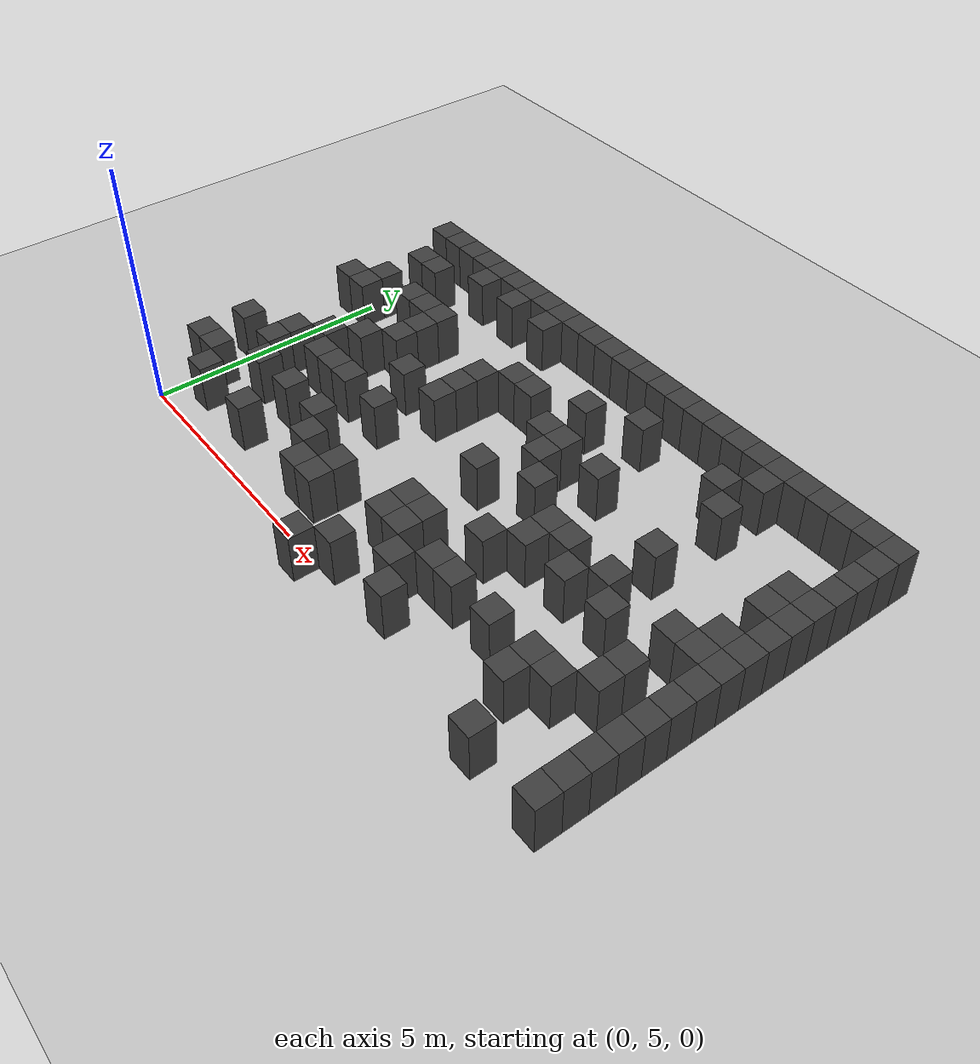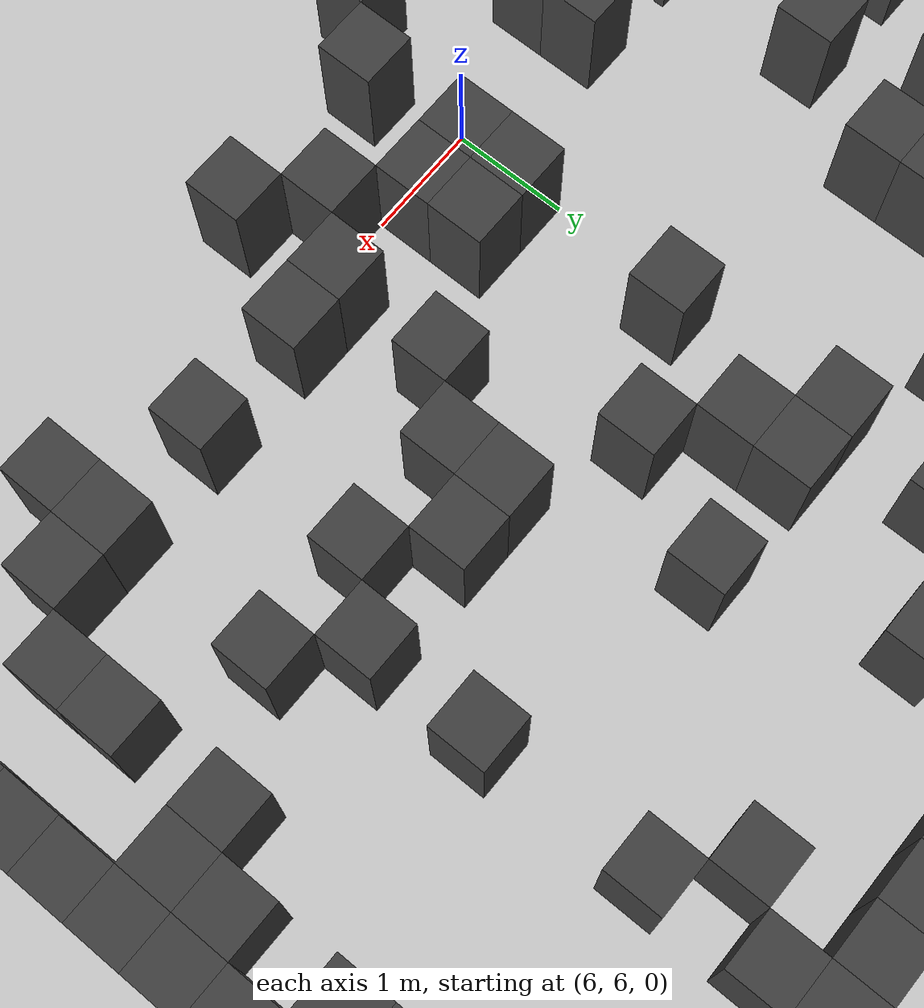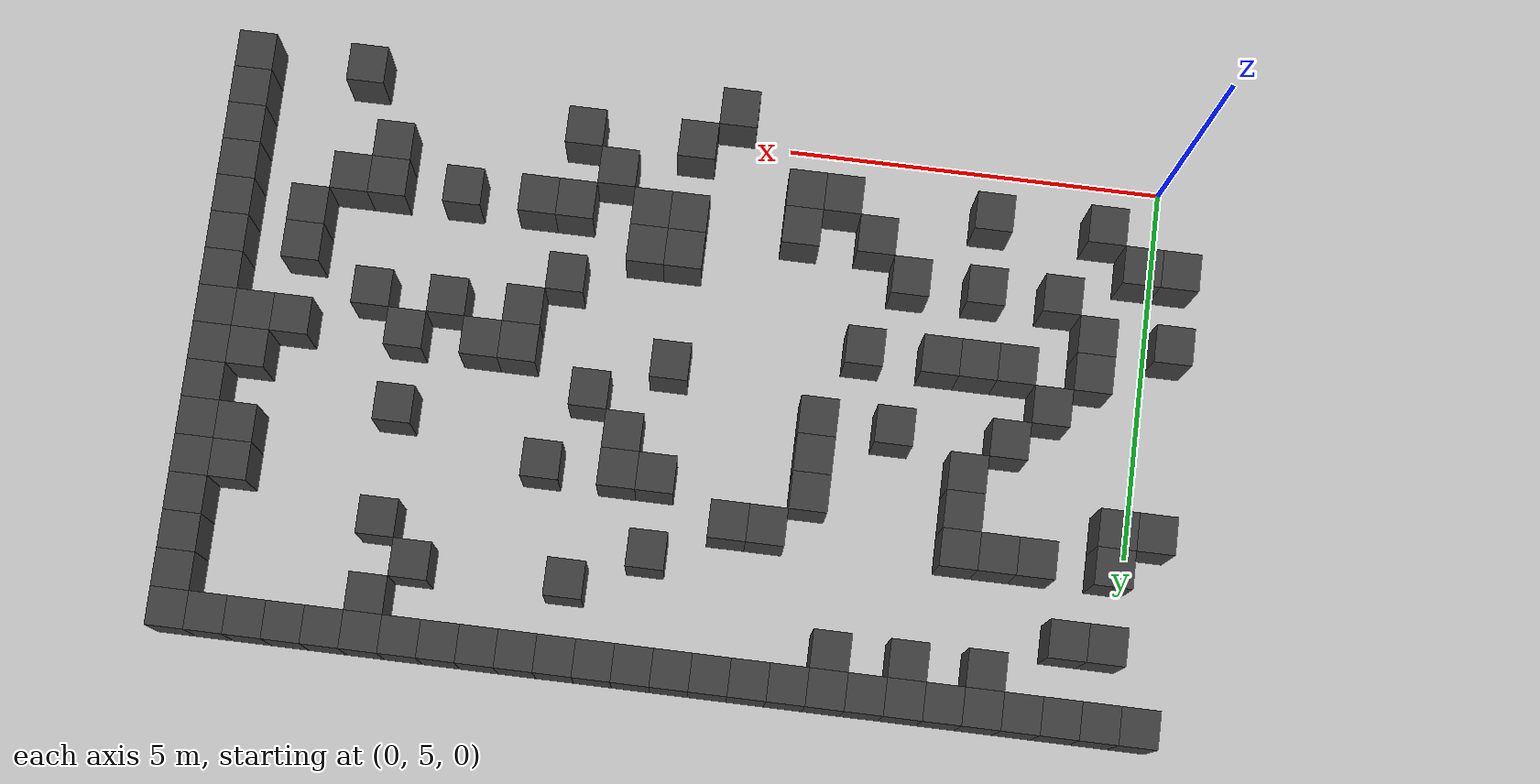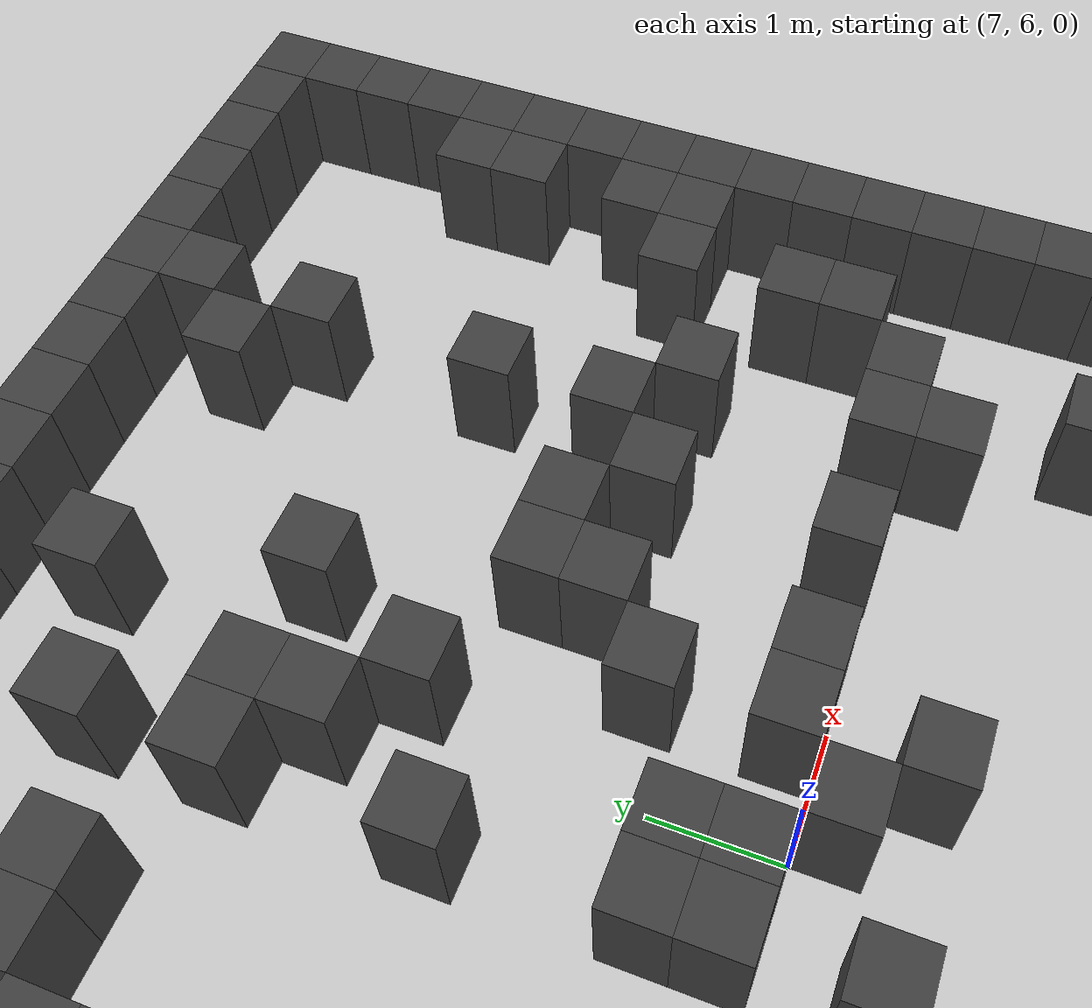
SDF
<sdf version="1.7">
 <world name="map_4752">
  <model name="ground_plane">
   <static>true</static>
   <link name="link">
    <collision name="collision">
     <geometry><plane><normal>0 0 1</normal><size>200 200</size></plane></geometry>
    </collision>
    <visual name="visual">
     <geometry><plane><normal>0 0 1</normal><size>200 200</size></plane></geometry>
     <material><ambient>0.8 0.8 0.8 1</ambient><diffuse>0.8 0.8 0.8 1</diffuse></material>
    </visual>
   </link>
  </model>
  <model name="maze_environment">
   <static>true</static>
   <link name="wall_24">
    <pose>-0.250 12.250 0.500 0 0 0</pose>
    <collision name="col"><geometry><box><size>0.5 0.5 1.0</size></box></geometry></collision>
    <visual name="vis">
     <geometry><box><size>0.5 0.5 1.0</size></box></geometry>
     <material><ambient>0.15 0.15 0.15 1</ambient><diffuse>0.25 0.25 0.25 1</diffuse></material>
    </visual>
   </link>
   <link name="wall_25">
    <pose>0.250 12.250 0.500 0 0 0</pose>
    <collision name="col"><geometry><box><size>0.5 0.5 1.0</size></box></geometry></collision>
    <visual name="vis">
     <geometry><box><size>0.5 0.5 1.0</size></box></geometry>
     <material><ambient>0.15 0.15 0.15 1</ambient><diffuse>0.25 0.25 0.25 1</diffuse></material>
    </visual>
   </link>
   <link name="wall_26">
    <pose>0.750 12.250 0.500 0 0 0</pose>
    <collision name="col"><geometry><box><size>0.5 0.5 1.0</size></box></geometry></collision>
    <visual name="vis">
     <geometry><box><size>0.5 0.5 1.0</size></box></geometry>
     <material><ambient>0.15 0.15 0.15 1</ambient><diffuse>0.25 0.25 0.25 1</diffuse></material>
    </visual>
   </link>
   <link name="wall_27">
    <pose>1.250 12.250 0.500 0 0 0</pose>
    <collision name="col"><geometry><box><size>0.5 0.5 1.0</size></box></geometry></collision>
    <visual name="vis">
     <geometry><box><size>0.5 0.5 1.0</size></box></geometry>
     <material><ambient>0.15 0.15 0.15 1</ambient><diffuse>0.25 0.25 0.25 1</diffuse></material>
    </visual>
   </link>
   <link name="wall_28">
    <pose>1.750 12.250 0.500 0 0 0</pose>
    <collision name="col"><geometry><box><size>0.5 0.5 1.0</size></box></geometry></collision>
    <visual name="vis">
     <geometry><box><size>0.5 0.5 1.0</size></box></geometry>
     <material><ambient>0.15 0.15 0.15 1</ambient><diffuse>0.25 0.25 0.25 1</diffuse></material>
    </visual>
   </link>
   <link name="wall_29">
    <pose>2.250 12.250 0.500 0 0 0</pose>
    <collision name="col"><geometry><box><size>0.5 0.5 1.0</size></box></geometry></collision>
    <visual name="vis">
     <geometry><box><size>0.5 0.5 1.0</size></box></geometry>
     <material><ambient>0.15 0.15 0.15 1</ambient><diffuse>0.25 0.25 0.25 1</diffuse></material>
    </visual>
   </link>
   <link name="wall_30">
    <pose>2.750 12.250 0.500 0 0 0</pose>
    <collision name="col"><geometry><box><size>0.5 0.5 1.0</size></box></geometry></collision>
    <visual name="vis">
     <geometry><box><size>0.5 0.5 1.0</size></box></geometry>
     <material><ambient>0.15 0.15 0.15 1</ambient><diffuse>0.25 0.25 0.25 1</diffuse></material>
    </visual>
   </link>
   <link name="wall_31">
    <pose>3.250 12.250 0.500 0 0 0</pose>
    <collision name="col"><geometry><box><size>0.5 0.5 1.0</size></box></geometry></collision>
    <visual name="vis">
     <geometry><box><size>0.5 0.5 1.0</size></box></geometry>
     <material><ambient>0.15 0.15 0.15 1</ambient><diffuse>0.25 0.25 0.25 1</diffuse></material>
    </visual>
   </link>
   <link name="wall_32">
    <pose>3.750 12.250 0.500 0 0 0</pose>
    <collision name="col"><geometry><box><size>0.5 0.5 1.0</size></box></geometry></collision>
    <visual name="vis">
     <geometry><box><size>0.5 0.5 1.0</size></box></geometry>
     <material><ambient>0.15 0.15 0.15 1</ambient><diffuse>0.25 0.25 0.25 1</diffuse></material>
    </visual>
   </link>
   <link name="wall_33">
    <pose>4.250 12.250 0.500 0 0 0</pose>
    <collision name="col"><geometry><box><size>0.5 0.5 1.0</size></box></geometry></collision>
    <visual name="vis">
     <geometry><box><size>0.5 0.5 1.0</size></box></geometry>
     <material><ambient>0.15 0.15 0.15 1</ambient><diffuse>0.25 0.25 0.25 1</diffuse></material>
    </visual>
   </link>
   <link name="wall_34">
    <pose>4.750 12.250 0.500 0 0 0</pose>
    <collision name="col"><geometry><box><size>0.5 0.5 1.0</size></box></geometry></collision>
    <visual name="vis">
     <geometry><box><size>0.5 0.5 1.0</size></box></geometry>
     <material><ambient>0.15 0.15 0.15 1</ambient><diffuse>0.25 0.25 0.25 1</diffuse></material>
    </visual>
   </link>
   <link name="wall_35">
    <pose>5.250 12.250 0.500 0 0 0</pose>
    <collision name="col"><geometry><box><size>0.5 0.5 1.0</size></box></geometry></collision>
    <visual name="vis">
     <geometry><box><size>0.5 0.5 1.0</size></box></geometry>
     <material><ambient>0.15 0.15 0.15 1</ambient><diffuse>0.25 0.25 0.25 1</diffuse></material>
    </visual>
   </link>
   <link name="wall_36">
    <pose>5.750 12.250 0.500 0 0 0</pose>
    <collision name="col"><geometry><box><size>0.5 0.5 1.0</size></box></geometry></collision>
    <visual name="vis">
     <geometry><box><size>0.5 0.5 1.0</size></box></geometry>
     <material><ambient>0.15 0.15 0.15 1</ambient><diffuse>0.25 0.25 0.25 1</diffuse></material>
    </visual>
   </link>
   <link name="wall_37">
    <pose>6.250 12.250 0.500 0 0 0</pose>
    <collision name="col"><geometry><box><size>0.5 0.5 1.0</size></box></geometry></collision>
    <visual name="vis">
     <geometry><box><size>0.5 0.5 1.0</size></box></geometry>
     <material><ambient>0.15 0.15 0.15 1</ambient><diffuse>0.25 0.25 0.25 1</diffuse></material>
    </visual>
   </link>
   <link name="wall_38">
    <pose>6.750 12.250 0.500 0 0 0</pose>
    <collision name="col"><geometry><box><size>0.5 0.5 1.0</size></box></geometry></collision>
    <visual name="vis">
     <geometry><box><size>0.5 0.5 1.0</size></box></geometry>
     <material><ambient>0.15 0.15 0.15 1</ambient><diffuse>0.25 0.25 0.25 1</diffuse></material>
    </visual>
   </link>
   <link name="wall_39">
    <pose>7.250 12.250 0.500 0 0 0</pose>
    <collision name="col"><geometry><box><size>0.5 0.5 1.0</size></box></geometry></collision>
    <visual name="vis">
     <geometry><box><size>0.5 0.5 1.0</size></box></geometry>
     <material><ambient>0.15 0.15 0.15 1</ambient><diffuse>0.25 0.25 0.25 1</diffuse></material>
    </visual>
   </link>
   <link name="wall_40">
    <pose>7.750 12.250 0.500 0 0 0</pose>
    <collision name="col"><geometry><box><size>0.5 0.5 1.0</size></box></geometry></collision>
    <visual name="vis">
     <geometry><box><size>0.5 0.5 1.0</size></box></geometry>
     <material><ambient>0.15 0.15 0.15 1</ambient><diffuse>0.25 0.25 0.25 1</diffuse></material>
    </visual>
   </link>
   <link name="wall_41">
    <pose>8.250 12.250 0.500 0 0 0</pose>
    <collision name="col"><geometry><box><size>0.5 0.5 1.0</size></box></geometry></collision>
    <visual name="vis">
     <geometry><box><size>0.5 0.5 1.0</size></box></geometry>
     <material><ambient>0.15 0.15 0.15 1</ambient><diffuse>0.25 0.25 0.25 1</diffuse></material>
    </visual>
   </link>
   <link name="wall_42">
    <pose>8.750 12.250 0.500 0 0 0</pose>
    <collision name="col"><geometry><box><size>0.5 0.5 1.0</size></box></geometry></collision>
    <visual name="vis">
     <geometry><box><size>0.5 0.5 1.0</size></box></geometry>
     <material><ambient>0.15 0.15 0.15 1</ambient><diffuse>0.25 0.25 0.25 1</diffuse></material>
    </visual>
   </link>
   <link name="wall_43">
    <pose>9.250 12.250 0.500 0 0 0</pose>
    <collision name="col"><geometry><box><size>0.5 0.5 1.0</size></box></geometry></collision>
    <visual name="vis">
     <geometry><box><size>0.5 0.5 1.0</size></box></geometry>
     <material><ambient>0.15 0.15 0.15 1</ambient><diffuse>0.25 0.25 0.25 1</diffuse></material>
    </visual>
   </link>
   <link name="wall_44">
    <pose>9.750 12.250 0.500 0 0 0</pose>
    <collision name="col"><geometry><box><size>0.5 0.5 1.0</size></box></geometry></collision>
    <visual name="vis">
     <geometry><box><size>0.5 0.5 1.0</size></box></geometry>
     <material><ambient>0.15 0.15 0.15 1</ambient><diffuse>0.25 0.25 0.25 1</diffuse></material>
    </visual>
   </link>
   <link name="wall_45">
    <pose>10.250 12.250 0.500 0 0 0</pose>
    <collision name="col"><geometry><box><size>0.5 0.5 1.0</size></box></geometry></collision>
    <visual name="vis">
     <geometry><box><size>0.5 0.5 1.0</size></box></geometry>
     <material><ambient>0.15 0.15 0.15 1</ambient><diffuse>0.25 0.25 0.25 1</diffuse></material>
    </visual>
   </link>
   <link name="wall_46">
    <pose>10.750 12.250 0.500 0 0 0</pose>
    <collision name="col"><geometry><box><size>0.5 0.5 1.0</size></box></geometry></collision>
    <visual name="vis">
     <geometry><box><size>0.5 0.5 1.0</size></box></geometry>
     <material><ambient>0.15 0.15 0.15 1</ambient><diffuse>0.25 0.25 0.25 1</diffuse></material>
    </visual>
   </link>
   <link name="wall_47">
    <pose>11.250 12.250 0.500 0 0 0</pose>
    <collision name="col"><geometry><box><size>0.5 0.5 1.0</size></box></geometry></collision>
    <visual name="vis">
     <geometry><box><size>0.5 0.5 1.0</size></box></geometry>
     <material><ambient>0.15 0.15 0.15 1</ambient><diffuse>0.25 0.25 0.25 1</diffuse></material>
    </visual>
   </link>
   <link name="wall_48">
    <pose>11.750 12.250 0.500 0 0 0</pose>
    <collision name="col"><geometry><box><size>0.5 0.5 1.0</size></box></geometry></collision>
    <visual name="vis">
     <geometry><box><size>0.5 0.5 1.0</size></box></geometry>
     <material><ambient>0.15 0.15 0.15 1</ambient><diffuse>0.25 0.25 0.25 1</diffuse></material>
    </visual>
   </link>
   <link name="wall_49">
    <pose>12.250 12.250 0.500 0 0 0</pose>
    <collision name="col"><geometry><box><size>0.5 0.5 1.0</size></box></geometry></collision>
    <visual name="vis">
     <geometry><box><size>0.5 0.5 1.0</size></box></geometry>
     <material><ambient>0.15 0.15 0.15 1</ambient><diffuse>0.25 0.25 0.25 1</diffuse></material>
    </visual>
   </link>
   <link name="wall_59">
    <pose>1.750 11.750 0.500 0 0 0</pose>
    <collision name="col"><geometry><box><size>0.5 0.5 1.0</size></box></geometry></collision>
    <visual name="vis">
     <geometry><box><size>0.5 0.5 1.0</size></box></geometry>
     <material><ambient>0.15 0.15 0.15 1</ambient><diffuse>0.25 0.25 0.25 1</diffuse></material>
    </visual>
   </link>
   <link name="wall_60">
    <pose>2.750 11.750 0.500 0 0 0</pose>
    <collision name="col"><geometry><box><size>0.5 0.5 1.0</size></box></geometry></collision>
    <visual name="vis">
     <geometry><box><size>0.5 0.5 1.0</size></box></geometry>
     <material><ambient>0.15 0.15 0.15 1</ambient><diffuse>0.25 0.25 0.25 1</diffuse></material>
    </visual>
   </link>
   <link name="wall_61">
    <pose>3.750 11.750 0.500 0 0 0</pose>
    <collision name="col"><geometry><box><size>0.5 0.5 1.0</size></box></geometry></collision>
    <visual name="vis">
     <geometry><box><size>0.5 0.5 1.0</size></box></geometry>
     <material><ambient>0.15 0.15 0.15 1</ambient><diffuse>0.25 0.25 0.25 1</diffuse></material>
    </visual>
   </link>
   <link name="wall_62">
    <pose>9.750 11.750 0.500 0 0 0</pose>
    <collision name="col"><geometry><box><size>0.5 0.5 1.0</size></box></geometry></collision>
    <visual name="vis">
     <geometry><box><size>0.5 0.5 1.0</size></box></geometry>
     <material><ambient>0.15 0.15 0.15 1</ambient><diffuse>0.25 0.25 0.25 1</diffuse></material>
    </visual>
   </link>
   <link name="wall_63">
    <pose>12.250 11.750 0.500 0 0 0</pose>
    <collision name="col"><geometry><box><size>0.5 0.5 1.0</size></box></geometry></collision>
    <visual name="vis">
     <geometry><box><size>0.5 0.5 1.0</size></box></geometry>
     <material><ambient>0.15 0.15 0.15 1</ambient><diffuse>0.25 0.25 0.25 1</diffuse></material>
    </visual>
   </link>
   <link name="wall_71">
    <pose>0.250 11.250 0.500 0 0 0</pose>
    <collision name="col"><geometry><box><size>0.5 0.5 1.0</size></box></geometry></collision>
    <visual name="vis">
     <geometry><box><size>0.5 0.5 1.0</size></box></geometry>
     <material><ambient>0.15 0.15 0.15 1</ambient><diffuse>0.25 0.25 0.25 1</diffuse></material>
    </visual>
   </link>
   <link name="wall_72">
    <pose>0.750 11.250 0.500 0 0 0</pose>
    <collision name="col"><geometry><box><size>0.5 0.5 1.0</size></box></geometry></collision>
    <visual name="vis">
     <geometry><box><size>0.5 0.5 1.0</size></box></geometry>
     <material><ambient>0.15 0.15 0.15 1</ambient><diffuse>0.25 0.25 0.25 1</diffuse></material>
    </visual>
   </link>
   <link name="wall_73">
    <pose>7.250 11.250 0.500 0 0 0</pose>
    <collision name="col"><geometry><box><size>0.5 0.5 1.0</size></box></geometry></collision>
    <visual name="vis">
     <geometry><box><size>0.5 0.5 1.0</size></box></geometry>
     <material><ambient>0.15 0.15 0.15 1</ambient><diffuse>0.25 0.25 0.25 1</diffuse></material>
    </visual>
   </link>
   <link name="wall_74">
    <pose>9.250 11.250 0.500 0 0 0</pose>
    <collision name="col"><geometry><box><size>0.5 0.5 1.0</size></box></geometry></collision>
    <visual name="vis">
     <geometry><box><size>0.5 0.5 1.0</size></box></geometry>
     <material><ambient>0.15 0.15 0.15 1</ambient><diffuse>0.25 0.25 0.25 1</diffuse></material>
    </visual>
   </link>
   <link name="wall_75">
    <pose>12.250 11.250 0.500 0 0 0</pose>
    <collision name="col"><geometry><box><size>0.5 0.5 1.0</size></box></geometry></collision>
    <visual name="vis">
     <geometry><box><size>0.5 0.5 1.0</size></box></geometry>
     <material><ambient>0.15 0.15 0.15 1</ambient><diffuse>0.25 0.25 0.25 1</diffuse></material>
    </visual>
   </link>
   <link name="wall_81">
    <pose>6.250 10.750 0.500 0 0 0</pose>
    <collision name="col"><geometry><box><size>0.5 0.5 1.0</size></box></geometry></collision>
    <visual name="vis">
     <geometry><box><size>0.5 0.5 1.0</size></box></geometry>
     <material><ambient>0.15 0.15 0.15 1</ambient><diffuse>0.25 0.25 0.25 1</diffuse></material>
    </visual>
   </link>
   <link name="wall_82">
    <pose>9.750 10.750 0.500 0 0 0</pose>
    <collision name="col"><geometry><box><size>0.5 0.5 1.0</size></box></geometry></collision>
    <visual name="vis">
     <geometry><box><size>0.5 0.5 1.0</size></box></geometry>
     <material><ambient>0.15 0.15 0.15 1</ambient><diffuse>0.25 0.25 0.25 1</diffuse></material>
    </visual>
   </link>
   <link name="wall_83">
    <pose>12.250 10.750 0.500 0 0 0</pose>
    <collision name="col"><geometry><box><size>0.5 0.5 1.0</size></box></geometry></collision>
    <visual name="vis">
     <geometry><box><size>0.5 0.5 1.0</size></box></geometry>
     <material><ambient>0.15 0.15 0.15 1</ambient><diffuse>0.25 0.25 0.25 1</diffuse></material>
    </visual>
   </link>
   <link name="wall_89">
    <pose>0.250 10.250 0.500 0 0 0</pose>
    <collision name="col"><geometry><box><size>0.5 0.5 1.0</size></box></geometry></collision>
    <visual name="vis">
     <geometry><box><size>0.5 0.5 1.0</size></box></geometry>
     <material><ambient>0.15 0.15 0.15 1</ambient><diffuse>0.25 0.25 0.25 1</diffuse></material>
    </visual>
   </link>
   <link name="wall_90">
    <pose>1.250 10.250 0.500 0 0 0</pose>
    <collision name="col"><geometry><box><size>0.5 0.5 1.0</size></box></geometry></collision>
    <visual name="vis">
     <geometry><box><size>0.5 0.5 1.0</size></box></geometry>
     <material><ambient>0.15 0.15 0.15 1</ambient><diffuse>0.25 0.25 0.25 1</diffuse></material>
    </visual>
   </link>
   <link name="wall_91">
    <pose>1.750 10.250 0.500 0 0 0</pose>
    <collision name="col"><geometry><box><size>0.5 0.5 1.0</size></box></geometry></collision>
    <visual name="vis">
     <geometry><box><size>0.5 0.5 1.0</size></box></geometry>
     <material><ambient>0.15 0.15 0.15 1</ambient><diffuse>0.25 0.25 0.25 1</diffuse></material>
    </visual>
   </link>
   <link name="wall_92">
    <pose>2.250 10.250 0.500 0 0 0</pose>
    <collision name="col"><geometry><box><size>0.5 0.5 1.0</size></box></geometry></collision>
    <visual name="vis">
     <geometry><box><size>0.5 0.5 1.0</size></box></geometry>
     <material><ambient>0.15 0.15 0.15 1</ambient><diffuse>0.25 0.25 0.25 1</diffuse></material>
    </visual>
   </link>
   <link name="wall_93">
    <pose>4.750 10.250 0.500 0 0 0</pose>
    <collision name="col"><geometry><box><size>0.5 0.5 1.0</size></box></geometry></collision>
    <visual name="vis">
     <geometry><box><size>0.5 0.5 1.0</size></box></geometry>
     <material><ambient>0.15 0.15 0.15 1</ambient><diffuse>0.25 0.25 0.25 1</diffuse></material>
    </visual>
   </link>
   <link name="wall_94">
    <pose>5.250 10.250 0.500 0 0 0</pose>
    <collision name="col"><geometry><box><size>0.5 0.5 1.0</size></box></geometry></collision>
    <visual name="vis">
     <geometry><box><size>0.5 0.5 1.0</size></box></geometry>
     <material><ambient>0.15 0.15 0.15 1</ambient><diffuse>0.25 0.25 0.25 1</diffuse></material>
    </visual>
   </link>
   <link name="wall_95">
    <pose>11.750 10.250 0.500 0 0 0</pose>
    <collision name="col"><geometry><box><size>0.5 0.5 1.0</size></box></geometry></collision>
    <visual name="vis">
     <geometry><box><size>0.5 0.5 1.0</size></box></geometry>
     <material><ambient>0.15 0.15 0.15 1</ambient><diffuse>0.25 0.25 0.25 1</diffuse></material>
    </visual>
   </link>
   <link name="wall_96">
    <pose>12.250 10.250 0.500 0 0 0</pose>
    <collision name="col"><geometry><box><size>0.5 0.5 1.0</size></box></geometry></collision>
    <visual name="vis">
     <geometry><box><size>0.5 0.5 1.0</size></box></geometry>
     <material><ambient>0.15 0.15 0.15 1</ambient><diffuse>0.25 0.25 0.25 1</diffuse></material>
    </visual>
   </link>
   <link name="wall_106">
    <pose>-0.250 9.750 0.500 0 0 0</pose>
    <collision name="col"><geometry><box><size>0.5 0.5 1.0</size></box></geometry></collision>
    <visual name="vis">
     <geometry><box><size>0.5 0.5 1.0</size></box></geometry>
     <material><ambient>0.15 0.15 0.15 1</ambient><diffuse>0.25 0.25 0.25 1</diffuse></material>
    </visual>
   </link>
   <link name="wall_107">
    <pose>0.250 9.750 0.500 0 0 0</pose>
    <collision name="col"><geometry><box><size>0.5 0.5 1.0</size></box></geometry></collision>
    <visual name="vis">
     <geometry><box><size>0.5 0.5 1.0</size></box></geometry>
     <material><ambient>0.15 0.15 0.15 1</ambient><diffuse>0.25 0.25 0.25 1</diffuse></material>
    </visual>
   </link>
   <link name="wall_108">
    <pose>2.250 9.750 0.500 0 0 0</pose>
    <collision name="col"><geometry><box><size>0.5 0.5 1.0</size></box></geometry></collision>
    <visual name="vis">
     <geometry><box><size>0.5 0.5 1.0</size></box></geometry>
     <material><ambient>0.15 0.15 0.15 1</ambient><diffuse>0.25 0.25 0.25 1</diffuse></material>
    </visual>
   </link>
   <link name="wall_109">
    <pose>4.250 9.750 0.500 0 0 0</pose>
    <collision name="col"><geometry><box><size>0.5 0.5 1.0</size></box></geometry></collision>
    <visual name="vis">
     <geometry><box><size>0.5 0.5 1.0</size></box></geometry>
     <material><ambient>0.15 0.15 0.15 1</ambient><diffuse>0.25 0.25 0.25 1</diffuse></material>
    </visual>
   </link>
   <link name="wall_110">
    <pose>6.250 9.750 0.500 0 0 0</pose>
    <collision name="col"><geometry><box><size>0.5 0.5 1.0</size></box></geometry></collision>
    <visual name="vis">
     <geometry><box><size>0.5 0.5 1.0</size></box></geometry>
     <material><ambient>0.15 0.15 0.15 1</ambient><diffuse>0.25 0.25 0.25 1</diffuse></material>
    </visual>
   </link>
   <link name="wall_111">
    <pose>6.750 9.750 0.500 0 0 0</pose>
    <collision name="col"><geometry><box><size>0.5 0.5 1.0</size></box></geometry></collision>
    <visual name="vis">
     <geometry><box><size>0.5 0.5 1.0</size></box></geometry>
     <material><ambient>0.15 0.15 0.15 1</ambient><diffuse>0.25 0.25 0.25 1</diffuse></material>
    </visual>
   </link>
   <link name="wall_112">
    <pose>7.750 9.750 0.500 0 0 0</pose>
    <collision name="col"><geometry><box><size>0.5 0.5 1.0</size></box></geometry></collision>
    <visual name="vis">
     <geometry><box><size>0.5 0.5 1.0</size></box></geometry>
     <material><ambient>0.15 0.15 0.15 1</ambient><diffuse>0.25 0.25 0.25 1</diffuse></material>
    </visual>
   </link>
   <link name="wall_113">
    <pose>11.750 9.750 0.500 0 0 0</pose>
    <collision name="col"><geometry><box><size>0.5 0.5 1.0</size></box></geometry></collision>
    <visual name="vis">
     <geometry><box><size>0.5 0.5 1.0</size></box></geometry>
     <material><ambient>0.15 0.15 0.15 1</ambient><diffuse>0.25 0.25 0.25 1</diffuse></material>
    </visual>
   </link>
   <link name="wall_114">
    <pose>12.250 9.750 0.500 0 0 0</pose>
    <collision name="col"><geometry><box><size>0.5 0.5 1.0</size></box></geometry></collision>
    <visual name="vis">
     <geometry><box><size>0.5 0.5 1.0</size></box></geometry>
     <material><ambient>0.15 0.15 0.15 1</ambient><diffuse>0.25 0.25 0.25 1</diffuse></material>
    </visual>
   </link>
   <link name="wall_121">
    <pose>2.250 9.250 0.500 0 0 0</pose>
    <collision name="col"><geometry><box><size>0.5 0.5 1.0</size></box></geometry></collision>
    <visual name="vis">
     <geometry><box><size>0.5 0.5 1.0</size></box></geometry>
     <material><ambient>0.15 0.15 0.15 1</ambient><diffuse>0.25 0.25 0.25 1</diffuse></material>
    </visual>
   </link>
   <link name="wall_122">
    <pose>4.250 9.250 0.500 0 0 0</pose>
    <collision name="col"><geometry><box><size>0.5 0.5 1.0</size></box></geometry></collision>
    <visual name="vis">
     <geometry><box><size>0.5 0.5 1.0</size></box></geometry>
     <material><ambient>0.15 0.15 0.15 1</ambient><diffuse>0.25 0.25 0.25 1</diffuse></material>
    </visual>
   </link>
   <link name="wall_123">
    <pose>6.750 9.250 0.500 0 0 0</pose>
    <collision name="col"><geometry><box><size>0.5 0.5 1.0</size></box></geometry></collision>
    <visual name="vis">
     <geometry><box><size>0.5 0.5 1.0</size></box></geometry>
     <material><ambient>0.15 0.15 0.15 1</ambient><diffuse>0.25 0.25 0.25 1</diffuse></material>
    </visual>
   </link>
   <link name="wall_124">
    <pose>9.750 9.250 0.500 0 0 0</pose>
    <collision name="col"><geometry><box><size>0.5 0.5 1.0</size></box></geometry></collision>
    <visual name="vis">
     <geometry><box><size>0.5 0.5 1.0</size></box></geometry>
     <material><ambient>0.15 0.15 0.15 1</ambient><diffuse>0.25 0.25 0.25 1</diffuse></material>
    </visual>
   </link>
   <link name="wall_125">
    <pose>12.250 9.250 0.500 0 0 0</pose>
    <collision name="col"><geometry><box><size>0.5 0.5 1.0</size></box></geometry></collision>
    <visual name="vis">
     <geometry><box><size>0.5 0.5 1.0</size></box></geometry>
     <material><ambient>0.15 0.15 0.15 1</ambient><diffuse>0.25 0.25 0.25 1</diffuse></material>
    </visual>
   </link>
   <link name="wall_131">
    <pose>1.750 8.750 0.500 0 0 0</pose>
    <collision name="col"><geometry><box><size>0.5 0.5 1.0</size></box></geometry></collision>
    <visual name="vis">
     <geometry><box><size>0.5 0.5 1.0</size></box></geometry>
     <material><ambient>0.15 0.15 0.15 1</ambient><diffuse>0.25 0.25 0.25 1</diffuse></material>
    </visual>
   </link>
   <link name="wall_132">
    <pose>3.250 8.750 0.500 0 0 0</pose>
    <collision name="col"><geometry><box><size>0.5 0.5 1.0</size></box></geometry></collision>
    <visual name="vis">
     <geometry><box><size>0.5 0.5 1.0</size></box></geometry>
     <material><ambient>0.15 0.15 0.15 1</ambient><diffuse>0.25 0.25 0.25 1</diffuse></material>
    </visual>
   </link>
   <link name="wall_133">
    <pose>4.250 8.750 0.500 0 0 0</pose>
    <collision name="col"><geometry><box><size>0.5 0.5 1.0</size></box></geometry></collision>
    <visual name="vis">
     <geometry><box><size>0.5 0.5 1.0</size></box></geometry>
     <material><ambient>0.15 0.15 0.15 1</ambient><diffuse>0.25 0.25 0.25 1</diffuse></material>
    </visual>
   </link>
   <link name="wall_134">
    <pose>7.250 8.750 0.500 0 0 0</pose>
    <collision name="col"><geometry><box><size>0.5 0.5 1.0</size></box></geometry></collision>
    <visual name="vis">
     <geometry><box><size>0.5 0.5 1.0</size></box></geometry>
     <material><ambient>0.15 0.15 0.15 1</ambient><diffuse>0.25 0.25 0.25 1</diffuse></material>
    </visual>
   </link>
   <link name="wall_135">
    <pose>11.750 8.750 0.500 0 0 0</pose>
    <collision name="col"><geometry><box><size>0.5 0.5 1.0</size></box></geometry></collision>
    <visual name="vis">
     <geometry><box><size>0.5 0.5 1.0</size></box></geometry>
     <material><ambient>0.15 0.15 0.15 1</ambient><diffuse>0.25 0.25 0.25 1</diffuse></material>
    </visual>
   </link>
   <link name="wall_136">
    <pose>12.250 8.750 0.500 0 0 0</pose>
    <collision name="col"><geometry><box><size>0.5 0.5 1.0</size></box></geometry></collision>
    <visual name="vis">
     <geometry><box><size>0.5 0.5 1.0</size></box></geometry>
     <material><ambient>0.15 0.15 0.15 1</ambient><diffuse>0.25 0.25 0.25 1</diffuse></material>
    </visual>
   </link>
   <link name="wall_142">
    <pose>1.250 8.250 0.500 0 0 0</pose>
    <collision name="col"><geometry><box><size>0.5 0.5 1.0</size></box></geometry></collision>
    <visual name="vis">
     <geometry><box><size>0.5 0.5 1.0</size></box></geometry>
     <material><ambient>0.15 0.15 0.15 1</ambient><diffuse>0.25 0.25 0.25 1</diffuse></material>
    </visual>
   </link>
   <link name="wall_143">
    <pose>6.250 8.250 0.500 0 0 0</pose>
    <collision name="col"><geometry><box><size>0.5 0.5 1.0</size></box></geometry></collision>
    <visual name="vis">
     <geometry><box><size>0.5 0.5 1.0</size></box></geometry>
     <material><ambient>0.15 0.15 0.15 1</ambient><diffuse>0.25 0.25 0.25 1</diffuse></material>
    </visual>
   </link>
   <link name="wall_144">
    <pose>8.250 8.250 0.500 0 0 0</pose>
    <collision name="col"><geometry><box><size>0.5 0.5 1.0</size></box></geometry></collision>
    <visual name="vis">
     <geometry><box><size>0.5 0.5 1.0</size></box></geometry>
     <material><ambient>0.15 0.15 0.15 1</ambient><diffuse>0.25 0.25 0.25 1</diffuse></material>
    </visual>
   </link>
   <link name="wall_145">
    <pose>8.750 8.250 0.500 0 0 0</pose>
    <collision name="col"><geometry><box><size>0.5 0.5 1.0</size></box></geometry></collision>
    <visual name="vis">
     <geometry><box><size>0.5 0.5 1.0</size></box></geometry>
     <material><ambient>0.15 0.15 0.15 1</ambient><diffuse>0.25 0.25 0.25 1</diffuse></material>
    </visual>
   </link>
   <link name="wall_146">
    <pose>9.750 8.250 0.500 0 0 0</pose>
    <collision name="col"><geometry><box><size>0.5 0.5 1.0</size></box></geometry></collision>
    <visual name="vis">
     <geometry><box><size>0.5 0.5 1.0</size></box></geometry>
     <material><ambient>0.15 0.15 0.15 1</ambient><diffuse>0.25 0.25 0.25 1</diffuse></material>
    </visual>
   </link>
   <link name="wall_147">
    <pose>11.250 8.250 0.500 0 0 0</pose>
    <collision name="col"><geometry><box><size>0.5 0.5 1.0</size></box></geometry></collision>
    <visual name="vis">
     <geometry><box><size>0.5 0.5 1.0</size></box></geometry>
     <material><ambient>0.15 0.15 0.15 1</ambient><diffuse>0.25 0.25 0.25 1</diffuse></material>
    </visual>
   </link>
   <link name="wall_148">
    <pose>11.750 8.250 0.500 0 0 0</pose>
    <collision name="col"><geometry><box><size>0.5 0.5 1.0</size></box></geometry></collision>
    <visual name="vis">
     <geometry><box><size>0.5 0.5 1.0</size></box></geometry>
     <material><ambient>0.15 0.15 0.15 1</ambient><diffuse>0.25 0.25 0.25 1</diffuse></material>
    </visual>
   </link>
   <link name="wall_149">
    <pose>12.250 8.250 0.500 0 0 0</pose>
    <collision name="col"><geometry><box><size>0.5 0.5 1.0</size></box></geometry></collision>
    <visual name="vis">
     <geometry><box><size>0.5 0.5 1.0</size></box></geometry>
     <material><ambient>0.15 0.15 0.15 1</ambient><diffuse>0.25 0.25 0.25 1</diffuse></material>
    </visual>
   </link>
   <link name="wall_157">
    <pose>0.750 7.750 0.500 0 0 0</pose>
    <collision name="col"><geometry><box><size>0.5 0.5 1.0</size></box></geometry></collision>
    <visual name="vis">
     <geometry><box><size>0.5 0.5 1.0</size></box></geometry>
     <material><ambient>0.15 0.15 0.15 1</ambient><diffuse>0.25 0.25 0.25 1</diffuse></material>
    </visual>
   </link>
   <link name="wall_158">
    <pose>1.750 7.750 0.500 0 0 0</pose>
    <collision name="col"><geometry><box><size>0.5 0.5 1.0</size></box></geometry></collision>
    <visual name="vis">
     <geometry><box><size>0.5 0.5 1.0</size></box></geometry>
     <material><ambient>0.15 0.15 0.15 1</ambient><diffuse>0.25 0.25 0.25 1</diffuse></material>
    </visual>
   </link>
   <link name="wall_159">
    <pose>2.250 7.750 0.500 0 0 0</pose>
    <collision name="col"><geometry><box><size>0.5 0.5 1.0</size></box></geometry></collision>
    <visual name="vis">
     <geometry><box><size>0.5 0.5 1.0</size></box></geometry>
     <material><ambient>0.15 0.15 0.15 1</ambient><diffuse>0.25 0.25 0.25 1</diffuse></material>
    </visual>
   </link>
   <link name="wall_160">
    <pose>2.750 7.750 0.500 0 0 0</pose>
    <collision name="col"><geometry><box><size>0.5 0.5 1.0</size></box></geometry></collision>
    <visual name="vis">
     <geometry><box><size>0.5 0.5 1.0</size></box></geometry>
     <material><ambient>0.15 0.15 0.15 1</ambient><diffuse>0.25 0.25 0.25 1</diffuse></material>
    </visual>
   </link>
   <link name="wall_161">
    <pose>3.750 7.750 0.500 0 0 0</pose>
    <collision name="col"><geometry><box><size>0.5 0.5 1.0</size></box></geometry></collision>
    <visual name="vis">
     <geometry><box><size>0.5 0.5 1.0</size></box></geometry>
     <material><ambient>0.15 0.15 0.15 1</ambient><diffuse>0.25 0.25 0.25 1</diffuse></material>
    </visual>
   </link>
   <link name="wall_162">
    <pose>8.250 7.750 0.500 0 0 0</pose>
    <collision name="col"><geometry><box><size>0.5 0.5 1.0</size></box></geometry></collision>
    <visual name="vis">
     <geometry><box><size>0.5 0.5 1.0</size></box></geometry>
     <material><ambient>0.15 0.15 0.15 1</ambient><diffuse>0.25 0.25 0.25 1</diffuse></material>
    </visual>
   </link>
   <link name="wall_163">
    <pose>9.250 7.750 0.500 0 0 0</pose>
    <collision name="col"><geometry><box><size>0.5 0.5 1.0</size></box></geometry></collision>
    <visual name="vis">
     <geometry><box><size>0.5 0.5 1.0</size></box></geometry>
     <material><ambient>0.15 0.15 0.15 1</ambient><diffuse>0.25 0.25 0.25 1</diffuse></material>
    </visual>
   </link>
   <link name="wall_164">
    <pose>10.250 7.750 0.500 0 0 0</pose>
    <collision name="col"><geometry><box><size>0.5 0.5 1.0</size></box></geometry></collision>
    <visual name="vis">
     <geometry><box><size>0.5 0.5 1.0</size></box></geometry>
     <material><ambient>0.15 0.15 0.15 1</ambient><diffuse>0.25 0.25 0.25 1</diffuse></material>
    </visual>
   </link>
   <link name="wall_165">
    <pose>12.250 7.750 0.500 0 0 0</pose>
    <collision name="col"><geometry><box><size>0.5 0.5 1.0</size></box></geometry></collision>
    <visual name="vis">
     <geometry><box><size>0.5 0.5 1.0</size></box></geometry>
     <material><ambient>0.15 0.15 0.15 1</ambient><diffuse>0.25 0.25 0.25 1</diffuse></material>
    </visual>
   </link>
   <link name="wall_172">
    <pose>-0.250 7.250 0.500 0 0 0</pose>
    <collision name="col"><geometry><box><size>0.5 0.5 1.0</size></box></geometry></collision>
    <visual name="vis">
     <geometry><box><size>0.5 0.5 1.0</size></box></geometry>
     <material><ambient>0.15 0.15 0.15 1</ambient><diffuse>0.25 0.25 0.25 1</diffuse></material>
    </visual>
   </link>
   <link name="wall_173">
    <pose>0.750 7.250 0.500 0 0 0</pose>
    <collision name="col"><geometry><box><size>0.5 0.5 1.0</size></box></geometry></collision>
    <visual name="vis">
     <geometry><box><size>0.5 0.5 1.0</size></box></geometry>
     <material><ambient>0.15 0.15 0.15 1</ambient><diffuse>0.25 0.25 0.25 1</diffuse></material>
    </visual>
   </link>
   <link name="wall_174">
    <pose>7.750 7.250 0.500 0 0 0</pose>
    <collision name="col"><geometry><box><size>0.5 0.5 1.0</size></box></geometry></collision>
    <visual name="vis">
     <geometry><box><size>0.5 0.5 1.0</size></box></geometry>
     <material><ambient>0.15 0.15 0.15 1</ambient><diffuse>0.25 0.25 0.25 1</diffuse></material>
    </visual>
   </link>
   <link name="wall_175">
    <pose>11.250 7.250 0.500 0 0 0</pose>
    <collision name="col"><geometry><box><size>0.5 0.5 1.0</size></box></geometry></collision>
    <visual name="vis">
     <geometry><box><size>0.5 0.5 1.0</size></box></geometry>
     <material><ambient>0.15 0.15 0.15 1</ambient><diffuse>0.25 0.25 0.25 1</diffuse></material>
    </visual>
   </link>
   <link name="wall_176">
    <pose>12.250 7.250 0.500 0 0 0</pose>
    <collision name="col"><geometry><box><size>0.5 0.5 1.0</size></box></geometry></collision>
    <visual name="vis">
     <geometry><box><size>0.5 0.5 1.0</size></box></geometry>
     <material><ambient>0.15 0.15 0.15 1</ambient><diffuse>0.25 0.25 0.25 1</diffuse></material>
    </visual>
   </link>
   <link name="wall_181">
    <pose>1.250 6.750 0.500 0 0 0</pose>
    <collision name="col"><geometry><box><size>0.5 0.5 1.0</size></box></geometry></collision>
    <visual name="vis">
     <geometry><box><size>0.5 0.5 1.0</size></box></geometry>
     <material><ambient>0.15 0.15 0.15 1</ambient><diffuse>0.25 0.25 0.25 1</diffuse></material>
    </visual>
   </link>
   <link name="wall_182">
    <pose>2.250 6.750 0.500 0 0 0</pose>
    <collision name="col"><geometry><box><size>0.5 0.5 1.0</size></box></geometry></collision>
    <visual name="vis">
     <geometry><box><size>0.5 0.5 1.0</size></box></geometry>
     <material><ambient>0.15 0.15 0.15 1</ambient><diffuse>0.25 0.25 0.25 1</diffuse></material>
    </visual>
   </link>
   <link name="wall_183">
    <pose>3.250 6.750 0.500 0 0 0</pose>
    <collision name="col"><geometry><box><size>0.5 0.5 1.0</size></box></geometry></collision>
    <visual name="vis">
     <geometry><box><size>0.5 0.5 1.0</size></box></geometry>
     <material><ambient>0.15 0.15 0.15 1</ambient><diffuse>0.25 0.25 0.25 1</diffuse></material>
    </visual>
   </link>
   <link name="wall_184">
    <pose>6.250 6.750 0.500 0 0 0</pose>
    <collision name="col"><geometry><box><size>0.5 0.5 1.0</size></box></geometry></collision>
    <visual name="vis">
     <geometry><box><size>0.5 0.5 1.0</size></box></geometry>
     <material><ambient>0.15 0.15 0.15 1</ambient><diffuse>0.25 0.25 0.25 1</diffuse></material>
    </visual>
   </link>
   <link name="wall_185">
    <pose>6.750 6.750 0.500 0 0 0</pose>
    <collision name="col"><geometry><box><size>0.5 0.5 1.0</size></box></geometry></collision>
    <visual name="vis">
     <geometry><box><size>0.5 0.5 1.0</size></box></geometry>
     <material><ambient>0.15 0.15 0.15 1</ambient><diffuse>0.25 0.25 0.25 1</diffuse></material>
    </visual>
   </link>
   <link name="wall_186">
    <pose>11.250 6.750 0.500 0 0 0</pose>
    <collision name="col"><geometry><box><size>0.5 0.5 1.0</size></box></geometry></collision>
    <visual name="vis">
     <geometry><box><size>0.5 0.5 1.0</size></box></geometry>
     <material><ambient>0.15 0.15 0.15 1</ambient><diffuse>0.25 0.25 0.25 1</diffuse></material>
    </visual>
   </link>
   <link name="wall_187">
    <pose>12.250 6.750 0.500 0 0 0</pose>
    <collision name="col"><geometry><box><size>0.5 0.5 1.0</size></box></geometry></collision>
    <visual name="vis">
     <geometry><box><size>0.5 0.5 1.0</size></box></geometry>
     <material><ambient>0.15 0.15 0.15 1</ambient><diffuse>0.25 0.25 0.25 1</diffuse></material>
    </visual>
   </link>
   <link name="wall_196">
    <pose>-0.250 6.250 0.500 0 0 0</pose>
    <collision name="col"><geometry><box><size>0.5 0.5 1.0</size></box></geometry></collision>
    <visual name="vis">
     <geometry><box><size>0.5 0.5 1.0</size></box></geometry>
     <material><ambient>0.15 0.15 0.15 1</ambient><diffuse>0.25 0.25 0.25 1</diffuse></material>
    </visual>
   </link>
   <link name="wall_197">
    <pose>0.250 6.250 0.500 0 0 0</pose>
    <collision name="col"><geometry><box><size>0.5 0.5 1.0</size></box></geometry></collision>
    <visual name="vis">
     <geometry><box><size>0.5 0.5 1.0</size></box></geometry>
     <material><ambient>0.15 0.15 0.15 1</ambient><diffuse>0.25 0.25 0.25 1</diffuse></material>
    </visual>
   </link>
   <link name="wall_198">
    <pose>3.750 6.250 0.500 0 0 0</pose>
    <collision name="col"><geometry><box><size>0.5 0.5 1.0</size></box></geometry></collision>
    <visual name="vis">
     <geometry><box><size>0.5 0.5 1.0</size></box></geometry>
     <material><ambient>0.15 0.15 0.15 1</ambient><diffuse>0.25 0.25 0.25 1</diffuse></material>
    </visual>
   </link>
   <link name="wall_199">
    <pose>4.750 6.250 0.500 0 0 0</pose>
    <collision name="col"><geometry><box><size>0.5 0.5 1.0</size></box></geometry></collision>
    <visual name="vis">
     <geometry><box><size>0.5 0.5 1.0</size></box></geometry>
     <material><ambient>0.15 0.15 0.15 1</ambient><diffuse>0.25 0.25 0.25 1</diffuse></material>
    </visual>
   </link>
   <link name="wall_200">
    <pose>6.250 6.250 0.500 0 0 0</pose>
    <collision name="col"><geometry><box><size>0.5 0.5 1.0</size></box></geometry></collision>
    <visual name="vis">
     <geometry><box><size>0.5 0.5 1.0</size></box></geometry>
     <material><ambient>0.15 0.15 0.15 1</ambient><diffuse>0.25 0.25 0.25 1</diffuse></material>
    </visual>
   </link>
   <link name="wall_201">
    <pose>6.750 6.250 0.500 0 0 0</pose>
    <collision name="col"><geometry><box><size>0.5 0.5 1.0</size></box></geometry></collision>
    <visual name="vis">
     <geometry><box><size>0.5 0.5 1.0</size></box></geometry>
     <material><ambient>0.15 0.15 0.15 1</ambient><diffuse>0.25 0.25 0.25 1</diffuse></material>
    </visual>
   </link>
   <link name="wall_202">
    <pose>7.750 6.250 0.500 0 0 0</pose>
    <collision name="col"><geometry><box><size>0.5 0.5 1.0</size></box></geometry></collision>
    <visual name="vis">
     <geometry><box><size>0.5 0.5 1.0</size></box></geometry>
     <material><ambient>0.15 0.15 0.15 1</ambient><diffuse>0.25 0.25 0.25 1</diffuse></material>
    </visual>
   </link>
   <link name="wall_203">
    <pose>8.250 6.250 0.500 0 0 0</pose>
    <collision name="col"><geometry><box><size>0.5 0.5 1.0</size></box></geometry></collision>
    <visual name="vis">
     <geometry><box><size>0.5 0.5 1.0</size></box></geometry>
     <material><ambient>0.15 0.15 0.15 1</ambient><diffuse>0.25 0.25 0.25 1</diffuse></material>
    </visual>
   </link>
   <link name="wall_204">
    <pose>9.250 6.250 0.500 0 0 0</pose>
    <collision name="col"><geometry><box><size>0.5 0.5 1.0</size></box></geometry></collision>
    <visual name="vis">
     <geometry><box><size>0.5 0.5 1.0</size></box></geometry>
     <material><ambient>0.15 0.15 0.15 1</ambient><diffuse>0.25 0.25 0.25 1</diffuse></material>
    </visual>
   </link>
   <link name="wall_205">
    <pose>10.250 6.250 0.500 0 0 0</pose>
    <collision name="col"><geometry><box><size>0.5 0.5 1.0</size></box></geometry></collision>
    <visual name="vis">
     <geometry><box><size>0.5 0.5 1.0</size></box></geometry>
     <material><ambient>0.15 0.15 0.15 1</ambient><diffuse>0.25 0.25 0.25 1</diffuse></material>
    </visual>
   </link>
   <link name="wall_206">
    <pose>10.750 6.250 0.500 0 0 0</pose>
    <collision name="col"><geometry><box><size>0.5 0.5 1.0</size></box></geometry></collision>
    <visual name="vis">
     <geometry><box><size>0.5 0.5 1.0</size></box></geometry>
     <material><ambient>0.15 0.15 0.15 1</ambient><diffuse>0.25 0.25 0.25 1</diffuse></material>
    </visual>
   </link>
   <link name="wall_207">
    <pose>12.250 6.250 0.500 0 0 0</pose>
    <collision name="col"><geometry><box><size>0.5 0.5 1.0</size></box></geometry></collision>
    <visual name="vis">
     <geometry><box><size>0.5 0.5 1.0</size></box></geometry>
     <material><ambient>0.15 0.15 0.15 1</ambient><diffuse>0.25 0.25 0.25 1</diffuse></material>
    </visual>
   </link>
   <link name="wall_214">
    <pose>0.750 5.750 0.500 0 0 0</pose>
    <collision name="col"><geometry><box><size>0.5 0.5 1.0</size></box></geometry></collision>
    <visual name="vis">
     <geometry><box><size>0.5 0.5 1.0</size></box></geometry>
     <material><ambient>0.15 0.15 0.15 1</ambient><diffuse>0.25 0.25 0.25 1</diffuse></material>
    </visual>
   </link>
   <link name="wall_215">
    <pose>2.250 5.750 0.500 0 0 0</pose>
    <collision name="col"><geometry><box><size>0.5 0.5 1.0</size></box></geometry></collision>
    <visual name="vis">
     <geometry><box><size>0.5 0.5 1.0</size></box></geometry>
     <material><ambient>0.15 0.15 0.15 1</ambient><diffuse>0.25 0.25 0.25 1</diffuse></material>
    </visual>
   </link>
   <link name="wall_216">
    <pose>4.250 5.750 0.500 0 0 0</pose>
    <collision name="col"><geometry><box><size>0.5 0.5 1.0</size></box></geometry></collision>
    <visual name="vis">
     <geometry><box><size>0.5 0.5 1.0</size></box></geometry>
     <material><ambient>0.15 0.15 0.15 1</ambient><diffuse>0.25 0.25 0.25 1</diffuse></material>
    </visual>
   </link>
   <link name="wall_217">
    <pose>4.750 5.750 0.500 0 0 0</pose>
    <collision name="col"><geometry><box><size>0.5 0.5 1.0</size></box></geometry></collision>
    <visual name="vis">
     <geometry><box><size>0.5 0.5 1.0</size></box></geometry>
     <material><ambient>0.15 0.15 0.15 1</ambient><diffuse>0.25 0.25 0.25 1</diffuse></material>
    </visual>
   </link>
   <link name="wall_218">
    <pose>7.250 5.750 0.500 0 0 0</pose>
    <collision name="col"><geometry><box><size>0.5 0.5 1.0</size></box></geometry></collision>
    <visual name="vis">
     <geometry><box><size>0.5 0.5 1.0</size></box></geometry>
     <material><ambient>0.15 0.15 0.15 1</ambient><diffuse>0.25 0.25 0.25 1</diffuse></material>
    </visual>
   </link>
   <link name="wall_219">
    <pose>10.250 5.750 0.500 0 0 0</pose>
    <collision name="col"><geometry><box><size>0.5 0.5 1.0</size></box></geometry></collision>
    <visual name="vis">
     <geometry><box><size>0.5 0.5 1.0</size></box></geometry>
     <material><ambient>0.15 0.15 0.15 1</ambient><diffuse>0.25 0.25 0.25 1</diffuse></material>
    </visual>
   </link>
   <link name="wall_220">
    <pose>12.250 5.750 0.500 0 0 0</pose>
    <collision name="col"><geometry><box><size>0.5 0.5 1.0</size></box></geometry></collision>
    <visual name="vis">
     <geometry><box><size>0.5 0.5 1.0</size></box></geometry>
     <material><ambient>0.15 0.15 0.15 1</ambient><diffuse>0.25 0.25 0.25 1</diffuse></material>
    </visual>
   </link>
   <link name="wall_228">
    <pose>6.250 5.250 0.500 0 0 0</pose>
    <collision name="col"><geometry><box><size>0.5 0.5 1.0</size></box></geometry></collision>
    <visual name="vis">
     <geometry><box><size>0.5 0.5 1.0</size></box></geometry>
     <material><ambient>0.15 0.15 0.15 1</ambient><diffuse>0.25 0.25 0.25 1</diffuse></material>
    </visual>
   </link>
   <link name="wall_229">
    <pose>7.750 5.250 0.500 0 0 0</pose>
    <collision name="col"><geometry><box><size>0.5 0.5 1.0</size></box></geometry></collision>
    <visual name="vis">
     <geometry><box><size>0.5 0.5 1.0</size></box></geometry>
     <material><ambient>0.15 0.15 0.15 1</ambient><diffuse>0.25 0.25 0.25 1</diffuse></material>
    </visual>
   </link>
   <link name="wall_230">
    <pose>12.250 5.250 0.500 0 0 0</pose>
    <collision name="col"><geometry><box><size>0.5 0.5 1.0</size></box></geometry></collision>
    <visual name="vis">
     <geometry><box><size>0.5 0.5 1.0</size></box></geometry>
     <material><ambient>0.15 0.15 0.15 1</ambient><diffuse>0.25 0.25 0.25 1</diffuse></material>
    </visual>
   </link>
   <link name="wall_237">
    <pose>5.750 4.750 0.500 0 0 0</pose>
    <collision name="col"><geometry><box><size>0.5 0.5 1.0</size></box></geometry></collision>
    <visual name="vis">
     <geometry><box><size>0.5 0.5 1.0</size></box></geometry>
     <material><ambient>0.15 0.15 0.15 1</ambient><diffuse>0.25 0.25 0.25 1</diffuse></material>
    </visual>
   </link>
   <link name="wall_238">
    <pose>10.750 4.750 0.500 0 0 0</pose>
    <collision name="col"><geometry><box><size>0.5 0.5 1.0</size></box></geometry></collision>
    <visual name="vis">
     <geometry><box><size>0.5 0.5 1.0</size></box></geometry>
     <material><ambient>0.15 0.15 0.15 1</ambient><diffuse>0.25 0.25 0.25 1</diffuse></material>
    </visual>
   </link>
   <link name="wall_239">
    <pose>12.250 4.750 0.500 0 0 0</pose>
    <collision name="col"><geometry><box><size>0.5 0.5 1.0</size></box></geometry></collision>
    <visual name="vis">
     <geometry><box><size>0.5 0.5 1.0</size></box></geometry>
     <material><ambient>0.15 0.15 0.15 1</ambient><diffuse>0.25 0.25 0.25 1</diffuse></material>
    </visual>
   </link>
  </model>
 </world>
</sdf>
